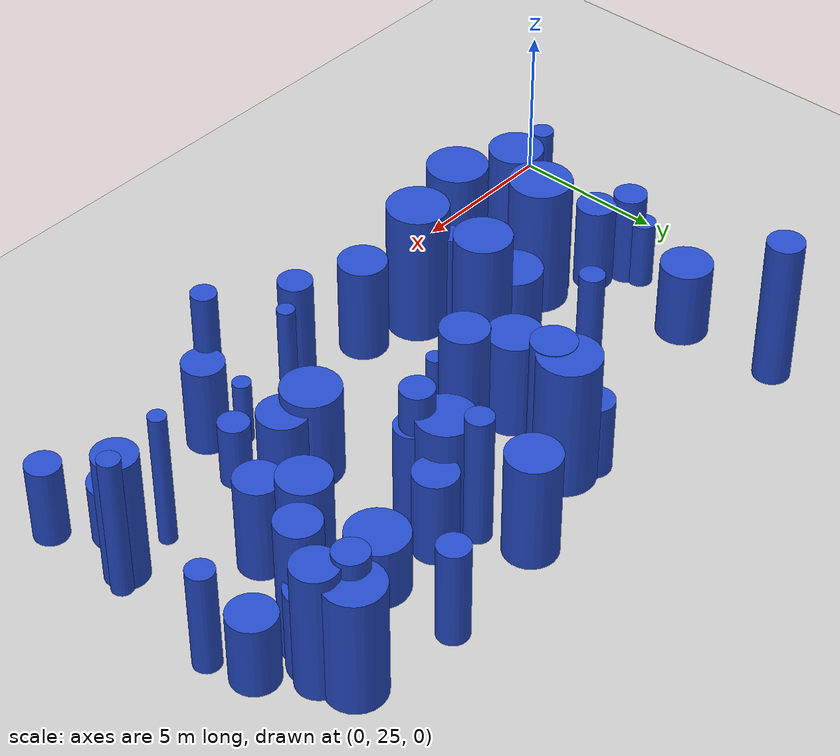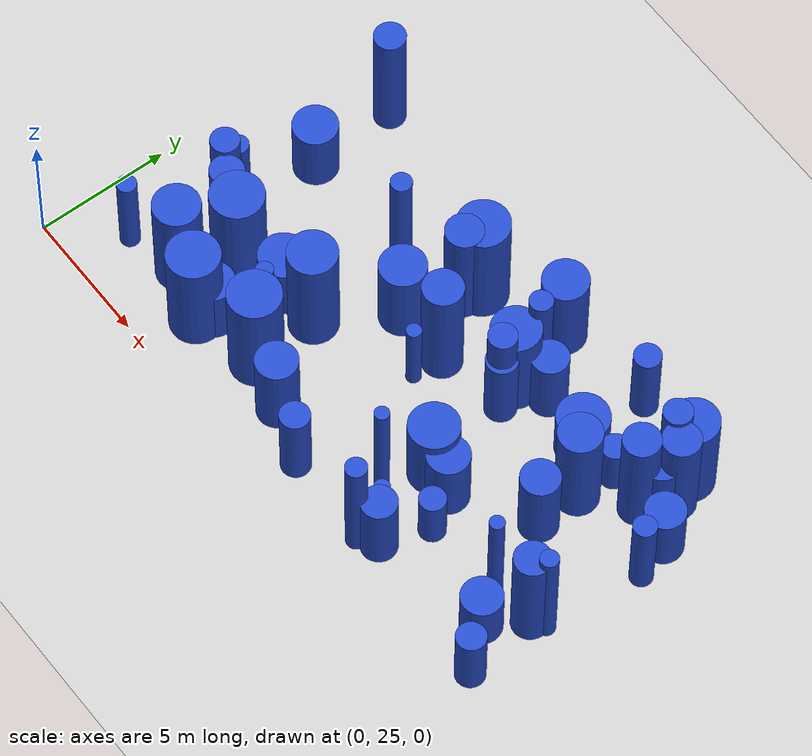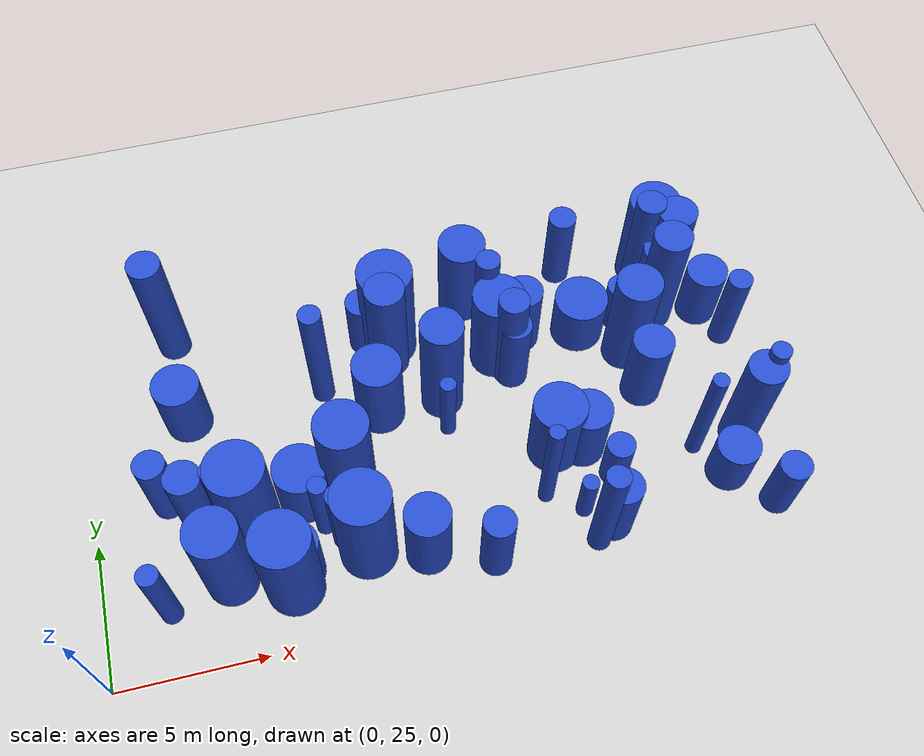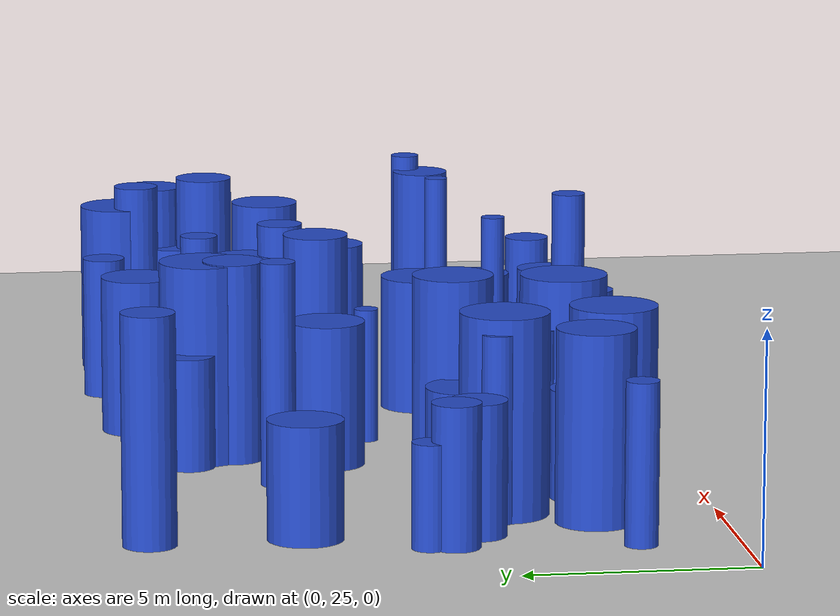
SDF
<sdf version="1.6">
 <world name="default">
  <model name="ground_plane">
   <static>1</static>
   <link name="link">
    <collision name="collision">
     <geometry><plane><normal>0 0 1</normal><size>100 100</size></plane></geometry>
     <surface><friction><ode><mu>100</mu><mu2>50</mu2></ode></friction></surface>
    </collision>
    <visual name="visual">
     <cast_shadows>0</cast_shadows>
     <geometry><plane><normal>0 0 1</normal><size>100 100</size></plane></geometry>
     <material>
      <script><uri>file://media/materials/scripts/gazebo.material</uri><name>Gazebo/Grey</name></script>
     </material>
    </visual>
   </link>
  </model>
  <model name="15">
   <static>0</static>
   <link name="link">
    <inertial>
     <mass>2</mass>
     <inertia><ixx>2.02878</ixx><ixy>0</ixy><ixz>0</ixz><iyy>2.02878</iyy><iyz>0</iyz><izz>0.837732</izz></inertia>
    </inertial>
    <collision name="collision">
     <geometry><cylinder><length>3.10797</length><radius>0.915277</radius></cylinder></geometry>
     <surface><contact><collide_without_contact>1</collide_without_contact></contact></surface>
    </collision>
    <visual name="visual">
     <geometry><cylinder><length>3.10797</length><radius>0.915277</radius></cylinder></geometry>
     <material>
      <script><uri>file://media/materials/scripts/gazebo.material</uri><name>Gazebo/Blue</name></script>
     </material>
    </visual>
    <gravity>0</gravity>
   </link>
   <pose>15.7285 29.9287 1.55399 0 -0 0</pose>
  </model>
  <model name="21">
   <static>0</static>
   <link name="link">
    <inertial>
     <mass>2</mass>
     <inertia>
      <ixx>0.942504</ixx>
      <ixy>0</ixy>
      <ixz>0</ixz>
      <iyy>0.942504</iyy>
      <iyz>0</iyz>
      <izz>0.157121</izz>
     </inertia>
    </inertial>
    <collision name="collision">
     <geometry><cylinder><length>2.27677</length><radius>0.396385</radius></cylinder></geometry>
     <surface><contact><collide_without_contact>1</collide_without_contact></contact></surface>
    </collision>
    <visual name="visual">
     <geometry><cylinder><length>2.27677</length><radius>0.396385</radius></cylinder></geometry>
     <material>
      <script><uri>file://media/materials/scripts/gazebo.material</uri><name>Gazebo/Blue</name></script>
     </material>
    </visual>
    <gravity>0</gravity>
   </link>
   <pose>2.46046 31.5423 1.13838 0 -0 0</pose>
  </model>
  <model name="29">
   <static>0</static>
   <link name="link">
    <inertial>
     <mass>2</mass>
     <inertia><ixx>1.13627</ixx><ixy>0</ixy><ixz>0</ixz><iyy>1.13627</iyy><iyz>0</iyz><izz>0.890575</izz></inertia>
    </inertial>
    <collision name="collision">
     <geometry><cylinder><length>2.03615</length><radius>0.943703</radius></cylinder></geometry>
     <surface><contact><collide_without_contact>1</collide_without_contact></contact></surface>
    </collision>
    <visual name="visual">
     <geometry><cylinder><length>2.03615</length><radius>0.943703</radius></cylinder></geometry>
     <material>
      <script><uri>file://media/materials/scripts/gazebo.material</uri><name>Gazebo/Blue</name></script>
     </material>
    </visual>
    <gravity>0</gravity>
   </link>
   <pose>17.9595 34.4953 1.01807 0 -0 0</pose>
  </model>
  <model name="33">
   <static>0</static>
   <link name="link">
    <inertial>
     <mass>2</mass>
     <inertia><ixx>3.34107</ixx><ixy>0</ixy><ixz>0</ixz><iyy>3.34107</iyy><iyz>0</iyz><izz>0.741521</izz></inertia>
    </inertial>
    <collision name="collision">
     <geometry><cylinder><length>4.22159</length><radius>0.861116</radius></cylinder></geometry>
     <surface><contact><collide_without_contact>1</collide_without_contact></contact></surface>
    </collision>
    <visual name="visual">
     <geometry><cylinder><length>4.22159</length><radius>0.861116</radius></cylinder></geometry>
     <material>
      <script><uri>file://media/materials/scripts/gazebo.material</uri><name>Gazebo/Blue</name></script>
     </material>
    </visual>
    <gravity>0</gravity>
   </link>
   <pose>4.2013 27.7585 2.1108 0 -0 0</pose>
  </model>
  <model name="34">
   <static>0</static>
   <link name="link">
    <inertial>
     <mass>2</mass>
     <inertia><ixx>1.44194</ixx><ixy>0</ixy><ixz>0</ixz><iyy>1.44194</iyy><iyz>0</iyz><izz>0.671354</izz></inertia>
    </inertial>
    <collision name="collision">
     <geometry><cylinder><length>2.57635</length><radius>0.819362</radius></cylinder></geometry>
     <surface><contact><collide_without_contact>1</collide_without_contact></contact></surface>
    </collision>
    <visual name="visual">
     <geometry><cylinder><length>2.57635</length><radius>0.819362</radius></cylinder></geometry>
     <material>
      <script><uri>file://media/materials/scripts/gazebo.material</uri><name>Gazebo/Blue</name></script>
     </material>
    </visual>
    <gravity>0</gravity>
   </link>
   <pose>3.57515 34.0262 1.28817 0 -0 0</pose>
  </model>
  <model name="52">
   <static>0</static>
   <link name="link">
    <inertial>
     <mass>2</mass>
     <inertia><ixx>3.32112</ixx><ixy>0</ixy><ixz>0</ixz><iyy>3.32112</iyy><iyz>0</iyz><izz>0.180098</izz></inertia>
    </inertial>
    <collision name="collision">
     <geometry><cylinder><length>4.40301</length><radius>0.42438</radius></cylinder></geometry>
     <surface><contact><collide_without_contact>1</collide_without_contact></contact></surface>
    </collision>
    <visual name="visual">
     <geometry><cylinder><length>4.40301</length><radius>0.42438</radius></cylinder></geometry>
     <material>
      <script><uri>file://media/materials/scripts/gazebo.material</uri><name>Gazebo/Blue</name></script>
     </material>
    </visual>
    <gravity>0</gravity>
   </link>
   <pose>14.6406 35.2188 2.2015 0 -0 0</pose>
  </model>
  <model name="58">
   <static>0</static>
   <link name="link">
    <inertial>
     <mass>2</mass>
     <inertia><ixx>2.13713</ixx><ixy>0</ixy><ixz>0</ixz><iyy>2.13713</iyy><iyz>0</iyz><izz>0.129492</izz></inertia>
    </inertial>
    <collision name="collision">
     <geometry><cylinder><length>3.52623</length><radius>0.35985</radius></cylinder></geometry>
     <surface><contact><collide_without_contact>1</collide_without_contact></contact></surface>
    </collision>
    <visual name="visual">
     <geometry><cylinder><length>3.52623</length><radius>0.35985</radius></cylinder></geometry>
     <material>
      <script><uri>file://media/materials/scripts/gazebo.material</uri><name>Gazebo/Blue</name></script>
     </material>
    </visual>
    <gravity>0</gravity>
   </link>
   <pose>2.13297 27.1405 1.76312 0 -0 0</pose>
  </model>
  <model name="59">
   <static>0</static>
   <link name="link">
    <inertial>
     <mass>2</mass>
     <inertia><ixx>1.95679</ixx><ixy>0</ixy><ixz>0</ixz><iyy>1.95679</iyy><iyz>0</iyz><izz>0.291907</izz></inertia>
    </inertial>
    <collision name="collision">
     <geometry><cylinder><length>3.29622</length><radius>0.540284</radius></cylinder></geometry>
     <surface><contact><collide_without_contact>1</collide_without_contact></contact></surface>
    </collision>
    <visual name="visual">
     <geometry><cylinder><length>3.29622</length><radius>0.540284</radius></cylinder></geometry>
     <material>
      <script><uri>file://media/materials/scripts/gazebo.material</uri><name>Gazebo/Blue</name></script>
     </material>
    </visual>
    <gravity>0</gravity>
   </link>
   <pose>12.7214 26.4089 1.64811 0 -0 0</pose>
  </model>
  <model name="99">
   <static>0</static>
   <link name="link">
    <inertial>
     <mass>2</mass>
     <inertia><ixx>2.01084</ixx><ixy>0</ixy><ixz>0</ixz><iyy>2.01084</iyy><iyz>0</iyz><izz>0.169037</izz></inertia>
    </inertial>
    <collision name="collision">
     <geometry><cylinder><length>3.39969</length><radius>0.411142</radius></cylinder></geometry>
     <surface><contact><collide_without_contact>1</collide_without_contact></contact></surface>
    </collision>
    <visual name="visual">
     <geometry><cylinder><length>3.39969</length><radius>0.411142</radius></cylinder></geometry>
     <material>
      <script><uri>file://media/materials/scripts/gazebo.material</uri><name>Gazebo/Blue</name></script>
     </material>
    </visual>
    <gravity>0</gravity>
   </link>
   <pose>8.06943 28.385 1.69985 0 -0 0</pose>
  </model>
  <model name="101">
   <static>0</static>
   <link name="link">
    <inertial>
     <mass>2</mass>
     <inertia><ixx>2.85249</ixx><ixy>0</ixy><ixz>0</ixz><iyy>2.85249</iyy><iyz>0</iyz><izz>0.131371</izz></inertia>
    </inertial>
    <collision name="collision">
     <geometry><cylinder><length>4.08911</length><radius>0.362452</radius></cylinder></geometry>
     <surface><contact><collide_without_contact>1</collide_without_contact></contact></surface>
    </collision>
    <visual name="visual">
     <geometry><cylinder><length>4.08911</length><radius>0.362452</radius></cylinder></geometry>
     <material>
      <script><uri>file://media/materials/scripts/gazebo.material</uri><name>Gazebo/Blue</name></script>
     </material>
    </visual>
    <gravity>0</gravity>
   </link>
   <pose>4.46368 29.8106 2.04456 0 -0 0</pose>
  </model>
  <model name="126">
   <static>0</static>
   <link name="link">
    <inertial>
     <mass>2</mass>
     <inertia><ixx>3.65056</ixx><ixy>0</ixy><ixz>0</ixz><iyy>3.65056</iyy><iyz>0</iyz><izz>0.476539</izz></inertia>
    </inertial>
    <collision name="collision">
     <geometry><cylinder><length>4.52479</length><radius>0.690318</radius></cylinder></geometry>
     <surface><contact><collide_without_contact>1</collide_without_contact></contact></surface>
    </collision>
    <visual name="visual">
     <geometry><cylinder><length>4.52479</length><radius>0.690318</radius></cylinder></geometry>
     <material>
      <script><uri>file://media/materials/scripts/gazebo.material</uri><name>Gazebo/Blue</name></script>
     </material>
    </visual>
    <gravity>0</gravity>
   </link>
   <pose>10.9775 34.793 2.26239 0 -0 0</pose>
  </model>
  <model name="131">
   <static>0</static>
   <link name="link">
    <inertial>
     <mass>2</mass>
     <inertia>
      <ixx>0.803513</ixx>
      <ixy>0</ixy>
      <ixz>0</ixz>
      <iyy>0.803513</iyy>
      <iyz>0</iyz>
      <izz>0.0823005</izz>
     </inertia>
    </inertial>
    <collision name="collision">
     <geometry><cylinder><length>2.13873</length><radius>0.286881</radius></cylinder></geometry>
     <surface><contact><collide_without_contact>1</collide_without_contact></contact></surface>
    </collision>
    <visual name="visual">
     <geometry><cylinder><length>2.13873</length><radius>0.286881</radius></cylinder></geometry>
     <material>
      <script><uri>file://media/materials/scripts/gazebo.material</uri><name>Gazebo/Blue</name></script>
     </material>
    </visual>
    <gravity>0</gravity>
   </link>
   <pose>16.106 27.4898 1.06937 0 -0 0</pose>
  </model>
  <model name="137">
   <static>0</static>
   <link name="link">
    <inertial>
     <mass>2</mass>
     <inertia><ixx>3.36348</ixx><ixy>0</ixy><ixz>0</ixz><iyy>3.36348</iyy><iyz>0</iyz><izz>0.618252</izz></inertia>
    </inertial>
    <collision name="collision">
     <geometry><cylinder><length>4.2809</length><radius>0.78629</radius></cylinder></geometry>
     <surface><contact><collide_without_contact>1</collide_without_contact></contact></surface>
    </collision>
    <visual name="visual">
     <geometry><cylinder><length>4.2809</length><radius>0.78629</radius></cylinder></geometry>
     <material>
      <script><uri>file://media/materials/scripts/gazebo.material</uri><name>Gazebo/Blue</name></script>
     </material>
    </visual>
    <gravity>0</gravity>
   </link>
   <pose>19.3556 33.2046 2.14045 0 -0 0</pose>
  </model>
  <model name="144">
   <static>0</static>
   <link name="link">
    <inertial>
     <mass>2</mass>
     <inertia><ixx>2.12755</ixx><ixy>0</ixy><ixz>0</ixz><iyy>2.12755</iyy><iyz>0</iyz><izz>0.723564</izz></inertia>
    </inertial>
    <collision name="collision">
     <geometry><cylinder><length>3.25494</length><radius>0.850626</radius></cylinder></geometry>
     <surface><contact><collide_without_contact>1</collide_without_contact></contact></surface>
    </collision>
    <visual name="visual">
     <geometry><cylinder><length>3.25494</length><radius>0.850626</radius></cylinder></geometry>
     <material>
      <script><uri>file://media/materials/scripts/gazebo.material</uri><name>Gazebo/Blue</name></script>
     </material>
    </visual>
    <gravity>0</gravity>
   </link>
   <pose>10.2162 32.7833 1.62747 0 -0 0</pose>
  </model>
  <model name="147">
   <static>0</static>
   <link name="link">
    <inertial>
     <mass>2</mass>
     <inertia><ixx>3.49009</ixx><ixy>0</ixy><ixz>0</ixz><iyy>3.49009</iyy><iyz>0</iyz><izz>0.274124</izz></inertia>
    </inertial>
    <collision name="collision">
     <geometry><cylinder><length>4.48533</length><radius>0.523568</radius></cylinder></geometry>
     <surface><contact><collide_without_contact>1</collide_without_contact></contact></surface>
    </collision>
    <visual name="visual">
     <geometry><cylinder><length>4.48533</length><radius>0.523568</radius></cylinder></geometry>
     <material>
      <script><uri>file://media/materials/scripts/gazebo.material</uri><name>Gazebo/Blue</name></script>
     </material>
    </visual>
    <gravity>0</gravity>
   </link>
   <pose>20.7487 36.1869 2.24266 0 -0 0</pose>
  </model>
  <model name="153">
   <static>0</static>
   <link name="link">
    <inertial>
     <mass>2</mass>
     <inertia><ixx>1.69776</ixx><ixy>0</ixy><ixz>0</ixz><iyy>1.69776</iyy><iyz>0</iyz><izz>0.423456</izz></inertia>
    </inertial>
    <collision name="collision">
     <geometry><cylinder><length>2.986</length><radius>0.650735</radius></cylinder></geometry>
     <surface><contact><collide_without_contact>1</collide_without_contact></contact></surface>
    </collision>
    <visual name="visual">
     <geometry><cylinder><length>2.986</length><radius>0.650735</radius></cylinder></geometry>
     <material>
      <script><uri>file://media/materials/scripts/gazebo.material</uri><name>Gazebo/Blue</name></script>
     </material>
    </visual>
    <gravity>0</gravity>
   </link>
   <pose>16.8882 26.7755 1.493 0 -0 0</pose>
  </model>
  <model name="175">
   <static>0</static>
   <link name="link">
    <inertial>
     <mass>2</mass>
     <inertia>
      <ixx>1.59317</ixx>
      <ixy>0</ixy>
      <ixz>0</ixz>
      <iyy>1.59317</iyy>
      <iyz>0</iyz>
      <izz>0.0750365</izz>
     </inertia>
    </inertial>
    <collision name="collision">
     <geometry><cylinder><length>3.05515</length><radius>0.273928</radius></cylinder></geometry>
     <surface><contact><collide_without_contact>1</collide_without_contact></contact></surface>
    </collision>
    <visual name="visual">
     <geometry><cylinder><length>3.05515</length><radius>0.273928</radius></cylinder></geometry>
     <material>
      <script><uri>file://media/materials/scripts/gazebo.material</uri><name>Gazebo/Blue</name></script>
     </material>
    </visual>
    <gravity>0</gravity>
   </link>
   <pose>12.3757 31.6197 1.52757 0 -0 0</pose>
  </model>
  <model name="179">
   <static>0</static>
   <link name="link">
    <inertial>
     <mass>2</mass>
     <inertia><ixx>4.21717</ixx><ixy>0</ixy><ixz>0</ixz><iyy>4.21717</iyy><iyz>0</iyz><izz>0.150288</izz></inertia>
    </inertial>
    <collision name="collision">
     <geometry><cylinder><length>4.98519</length><radius>0.387669</radius></cylinder></geometry>
     <surface><contact><collide_without_contact>1</collide_without_contact></contact></surface>
    </collision>
    <visual name="visual">
     <geometry><cylinder><length>4.98519</length><radius>0.387669</radius></cylinder></geometry>
     <material>
      <script><uri>file://media/materials/scripts/gazebo.material</uri><name>Gazebo/Blue</name></script>
     </material>
    </visual>
    <gravity>0</gravity>
   </link>
   <pose>8.40302 34.0732 2.4926 0 -0 0</pose>
  </model>
  <model name="183">
   <static>0</static>
   <link name="link">
    <inertial>
     <mass>2</mass>
     <inertia><ixx>2.49307</ixx><ixy>0</ixy><ixz>0</ixz><iyy>2.49307</iyy><iyz>0</iyz><izz>0.692048</izz></inertia>
    </inertial>
    <collision name="collision">
     <geometry><cylinder><length>3.58919</length><radius>0.831894</radius></cylinder></geometry>
     <surface><contact><collide_without_contact>1</collide_without_contact></contact></surface>
    </collision>
    <visual name="visual">
     <geometry><cylinder><length>3.58919</length><radius>0.831894</radius></cylinder></geometry>
     <material>
      <script><uri>file://media/materials/scripts/gazebo.material</uri><name>Gazebo/Blue</name></script>
     </material>
    </visual>
    <gravity>0</gravity>
   </link>
   <pose>14.1066 36.6947 1.79459 0 -0 0</pose>
  </model>
  <model name="185">
   <static>0</static>
   <link name="link">
    <inertial>
     <mass>2</mass>
     <inertia><ixx>4.28066</ixx><ixy>0</ixy><ixz>0</ixz><iyy>4.28066</iyy><iyz>0</iyz><izz>0.335671</izz></inertia>
    </inertial>
    <collision name="collision">
     <geometry><cylinder><length>4.96759</length><radius>0.579371</radius></cylinder></geometry>
     <surface><contact><collide_without_contact>1</collide_without_contact></contact></surface>
    </collision>
    <visual name="visual">
     <geometry><cylinder><length>4.96759</length><radius>0.579371</radius></cylinder></geometry>
     <material>
      <script><uri>file://media/materials/scripts/gazebo.material</uri><name>Gazebo/Blue</name></script>
     </material>
    </visual>
    <gravity>0</gravity>
   </link>
   <pose>3.46128 37.3119 2.4838 0 -0 0</pose>
  </model>
  <model name="195">
   <static>0</static>
   <link name="link">
    <inertial>
     <mass>2</mass>
     <inertia><ixx>2.86775</ixx><ixy>0</ixy><ixz>0</ixz><iyy>2.86775</iyy><iyz>0</iyz><izz>0.80804</izz></inertia>
    </inertial>
    <collision name="collision">
     <geometry><cylinder><length>3.84478</length><radius>0.898911</radius></cylinder></geometry>
     <surface><contact><collide_without_contact>1</collide_without_contact></contact></surface>
    </collision>
    <visual name="visual">
     <geometry><cylinder><length>3.84478</length><radius>0.898911</radius></cylinder></geometry>
     <material>
      <script><uri>file://media/materials/scripts/gazebo.material</uri><name>Gazebo/Blue</name></script>
     </material>
    </visual>
    <gravity>0</gravity>
   </link>
   <pose>14.7374 34.1048 1.92239 0 -0 0</pose>
  </model>
  <model name="209">
   <static>0</static>
   <link name="link">
    <inertial>
     <mass>2</mass>
     <inertia><ixx>3.79171</ixx><ixy>0</ixy><ixz>0</ixz><iyy>3.79171</iyy><iyz>0</iyz><izz>0.451853</izz></inertia>
    </inertial>
    <collision name="collision">
     <geometry><cylinder><length>4.62544</length><radius>0.6722</radius></cylinder></geometry>
     <surface><contact><collide_without_contact>1</collide_without_contact></contact></surface>
    </collision>
    <visual name="visual">
     <geometry><cylinder><length>4.62544</length><radius>0.6722</radius></cylinder></geometry>
     <material>
      <script><uri>file://media/materials/scripts/gazebo.material</uri><name>Gazebo/Blue</name></script>
     </material>
    </visual>
    <gravity>0</gravity>
   </link>
   <pose>20.9317 34.5239 2.31272 0 -0 0</pose>
  </model>
  <model name="220">
   <static>0</static>
   <link name="link">
    <inertial>
     <mass>2</mass>
     <inertia><ixx>1.73735</ixx><ixy>0</ixy><ixz>0</ixz><iyy>1.73735</iyy><iyz>0</iyz><izz>0.282029</izz></inertia>
    </inertial>
    <collision name="collision">
     <geometry><cylinder><length>3.09484</length><radius>0.531064</radius></cylinder></geometry>
     <surface><contact><collide_without_contact>1</collide_without_contact></contact></surface>
    </collision>
    <visual name="visual">
     <geometry><cylinder><length>3.09484</length><radius>0.531064</radius></cylinder></geometry>
     <material>
      <script><uri>file://media/materials/scripts/gazebo.material</uri><name>Gazebo/Blue</name></script>
     </material>
    </visual>
    <gravity>0</gravity>
   </link>
   <pose>2.48731 30.9961 1.54742 0 -0 0</pose>
  </model>
  <model name="225">
   <static>0</static>
   <link name="link">
    <inertial>
     <mass>2</mass>
     <inertia><ixx>3.35615</ixx><ixy>0</ixy><ixz>0</ixz><iyy>3.35615</iyy><iyz>0</iyz><izz>0.473322</izz></inertia>
    </inertial>
    <collision name="collision">
     <geometry><cylinder><length>4.32631</length><radius>0.687984</radius></cylinder></geometry>
     <surface><contact><collide_without_contact>1</collide_without_contact></contact></surface>
    </collision>
    <visual name="visual">
     <geometry><cylinder><length>4.32631</length><radius>0.687984</radius></cylinder></geometry>
     <material>
      <script><uri>file://media/materials/scripts/gazebo.material</uri><name>Gazebo/Blue</name></script>
     </material>
    </visual>
    <gravity>0</gravity>
   </link>
   <pose>21.5656 35.706 2.16315 0 -0 0</pose>
  </model>
  <model name="228">
   <static>0</static>
   <link name="link">
    <inertial>
     <mass>2</mass>
     <inertia><ixx>1.73638</ixx><ixy>0</ixy><ixz>0</ixz><iyy>1.73638</iyy><iyz>0</iyz><izz>0.623905</izz></inertia>
    </inertial>
    <collision name="collision">
     <geometry><cylinder><length>2.92345</length><radius>0.789877</radius></cylinder></geometry>
     <surface><contact><collide_without_contact>1</collide_without_contact></contact></surface>
    </collision>
    <visual name="visual">
     <geometry><cylinder><length>2.92345</length><radius>0.789877</radius></cylinder></geometry>
     <material>
      <script><uri>file://media/materials/scripts/gazebo.material</uri><name>Gazebo/Blue</name></script>
     </material>
    </visual>
    <gravity>0</gravity>
   </link>
   <pose>21.2095 35.2223 1.46173 0 -0 0</pose>
  </model>
  <model name="234">
   <static>0</static>
   <link name="link">
    <inertial>
     <mass>2</mass>
     <inertia><ixx>4.06155</ixx><ixy>0</ixy><ixz>0</ixz><iyy>4.06155</iyy><iyz>0</iyz><izz>0.153224</izz></inertia>
    </inertial>
    <collision name="collision">
     <geometry><cylinder><length>4.88975</length><radius>0.391438</radius></cylinder></geometry>
     <surface><contact><collide_without_contact>1</collide_without_contact></contact></surface>
    </collision>
    <visual name="visual">
     <geometry><cylinder><length>4.88975</length><radius>0.391438</radius></cylinder></geometry>
     <material>
      <script><uri>file://media/materials/scripts/gazebo.material</uri><name>Gazebo/Blue</name></script>
     </material>
    </visual>
    <gravity>0</gravity>
   </link>
   <pose>16.257 26.3131 2.44487 0 -0 0</pose>
  </model>
  <model name="264">
   <static>0</static>
   <link name="link">
    <inertial>
     <mass>2</mass>
     <inertia><ixx>1.35654</ixx><ixy>0</ixy><ixz>0</ixz><iyy>1.35654</iyy><iyz>0</iyz><izz>0.813174</izz></inertia>
    </inertial>
    <collision name="collision">
     <geometry><cylinder><length>2.38741</length><radius>0.901762</radius></cylinder></geometry>
     <surface><contact><collide_without_contact>1</collide_without_contact></contact></surface>
    </collision>
    <visual name="visual">
     <geometry><cylinder><length>2.38741</length><radius>0.901762</radius></cylinder></geometry>
     <material>
      <script><uri>file://media/materials/scripts/gazebo.material</uri><name>Gazebo/Blue</name></script>
     </material>
    </visual>
    <gravity>0</gravity>
   </link>
   <pose>7.04181 30.1082 1.1937 0 -0 0</pose>
  </model>
  <model name="272">
   <static>0</static>
   <link name="link">
    <inertial>
     <mass>2</mass>
     <inertia>
      <ixx>0.881799</ixx>
      <ixy>0</ixy>
      <ixz>0</ixz>
      <iyy>0.881799</iyy>
      <iyz>0</iyz>
      <izz>0.234059</izz>
     </inertia>
    </inertial>
    <collision name="collision">
     <geometry><cylinder><length>2.14211</length><radius>0.483796</radius></cylinder></geometry>
     <surface><contact><collide_without_contact>1</collide_without_contact></contact></surface>
    </collision>
    <visual name="visual">
     <geometry><cylinder><length>2.14211</length><radius>0.483796</radius></cylinder></geometry>
     <material>
      <script><uri>file://media/materials/scripts/gazebo.material</uri><name>Gazebo/Blue</name></script>
     </material>
    </visual>
    <gravity>0</gravity>
   </link>
   <pose>17.4806 28.5494 1.07105 0 -0 0</pose>
  </model>
  <model name="274">
   <static>0</static>
   <link name="link">
    <inertial>
     <mass>2</mass>
     <inertia>
      <ixx>0.828481</ixx>
      <ixy>0</ixy>
      <ixz>0</ixz>
      <iyy>0.828481</iyy>
      <iyz>0</iyz>
      <izz>0.248676</izz>
     </inertia>
    </inertial>
    <collision name="collision">
     <geometry><cylinder><length>2.05545</length><radius>0.498675</radius></cylinder></geometry>
     <surface><contact><collide_without_contact>1</collide_without_contact></contact></surface>
    </collision>
    <visual name="visual">
     <geometry><cylinder><length>2.05545</length><radius>0.498675</radius></cylinder></geometry>
     <material>
      <script><uri>file://media/materials/scripts/gazebo.material</uri><name>Gazebo/Blue</name></script>
     </material>
    </visual>
    <gravity>0</gravity>
   </link>
   <pose>19.5015 34.638 1.02772 0 -0 0</pose>
  </model>
  <model name="294">
   <static>0</static>
   <link name="link">
    <inertial>
     <mass>2</mass>
     <inertia><ixx>3.86112</ixx><ixy>0</ixy><ixz>0</ixz><iyy>3.86112</iyy><iyz>0</iyz><izz>0.808009</izz></inertia>
    </inertial>
    <collision name="collision">
     <geometry><cylinder><length>4.55441</length><radius>0.898893</radius></cylinder></geometry>
     <surface><contact><collide_without_contact>1</collide_without_contact></contact></surface>
    </collision>
    <visual name="visual">
     <geometry><cylinder><length>4.55441</length><radius>0.898893</radius></cylinder></geometry>
     <material>
      <script><uri>file://media/materials/scripts/gazebo.material</uri><name>Gazebo/Blue</name></script>
     </material>
    </visual>
    <gravity>0</gravity>
   </link>
   <pose>8.62309 30.1861 2.27721 0 -0 0</pose>
  </model>
  <model name="309">
   <static>0</static>
   <link name="link">
    <inertial>
     <mass>2</mass>
     <inertia><ixx>3.81638</ixx><ixy>0</ixy><ixz>0</ixz><iyy>3.81638</iyy><iyz>0</iyz><izz>0.93604</izz></inertia>
    </inertial>
    <collision name="collision">
     <geometry><cylinder><length>4.4822</length><radius>0.967492</radius></cylinder></geometry>
     <surface><contact><collide_without_contact>1</collide_without_contact></contact></surface>
    </collision>
    <visual name="visual">
     <geometry><cylinder><length>4.4822</length><radius>0.967492</radius></cylinder></geometry>
     <material>
      <script><uri>file://media/materials/scripts/gazebo.material</uri><name>Gazebo/Blue</name></script>
     </material>
    </visual>
    <gravity>0</gravity>
   </link>
   <pose>8.72669 27.7035 2.2411 0 -0 0</pose>
  </model>
  <model name="317">
   <static>0</static>
   <link name="link">
    <inertial>
     <mass>2</mass>
     <inertia><ixx>1.91824</ixx><ixy>0</ixy><ixz>0</ixz><iyy>1.91824</iyy><iyz>0</iyz><izz>0.241006</izz></inertia>
    </inertial>
    <collision name="collision">
     <geometry><cylinder><length>3.28427</length><radius>0.490923</radius></cylinder></geometry>
     <surface><contact><collide_without_contact>1</collide_without_contact></contact></surface>
    </collision>
    <visual name="visual">
     <geometry><cylinder><length>3.28427</length><radius>0.490923</radius></cylinder></geometry>
     <material>
      <script><uri>file://media/materials/scripts/gazebo.material</uri><name>Gazebo/Blue</name></script>
     </material>
    </visual>
    <gravity>0</gravity>
   </link>
   <pose>17.942 37.1835 1.64213 0 -0 0</pose>
  </model>
  <model name="327">
   <static>0</static>
   <link name="link">
    <inertial>
     <mass>2</mass>
     <inertia><ixx>1.61984</ixx><ixy>0</ixy><ixz>0</ixz><iyy>1.61984</iyy><iyz>0</iyz><izz>0.388701</izz></inertia>
    </inertial>
    <collision name="collision">
     <geometry><cylinder><length>2.92454</length><radius>0.623459</radius></cylinder></geometry>
     <surface><contact><collide_without_contact>1</collide_without_contact></contact></surface>
    </collision>
    <visual name="visual">
     <geometry><cylinder><length>2.92454</length><radius>0.623459</radius></cylinder></geometry>
     <material>
      <script><uri>file://media/materials/scripts/gazebo.material</uri><name>Gazebo/Blue</name></script>
     </material>
    </visual>
    <gravity>0</gravity>
   </link>
   <pose>3.41784 30.3952 1.46227 0 -0 0</pose>
  </model>
  <model name="333">
   <static>0</static>
   <link name="link">
    <inertial>
     <mass>2</mass>
     <inertia><ixx>1.29841</ixx><ixy>0</ixy><ixz>0</ixz><iyy>1.29841</iyy><iyz>0</iyz><izz>0.644225</izz></inertia>
    </inertial>
    <collision name="collision">
     <geometry><cylinder><length>2.42029</length><radius>0.802636</radius></cylinder></geometry>
     <surface><contact><collide_without_contact>1</collide_without_contact></contact></surface>
    </collision>
    <visual name="visual">
     <geometry><cylinder><length>2.42029</length><radius>0.802636</radius></cylinder></geometry>
     <material>
      <script><uri>file://media/materials/scripts/gazebo.material</uri><name>Gazebo/Blue</name></script>
     </material>
    </visual>
    <gravity>0</gravity>
   </link>
   <pose>6.43596 27.5734 1.21014 0 -0 0</pose>
  </model>
  <model name="348">
   <static>0</static>
   <link name="link">
    <inertial>
     <mass>2</mass>
     <inertia><ixx>1.76393</ixx><ixy>0</ixy><ixz>0</ixz><iyy>1.76393</iyy><iyz>0</iyz><izz>0.105096</izz></inertia>
    </inertial>
    <collision name="collision">
     <geometry><cylinder><length>3.20441</length><radius>0.324185</radius></cylinder></geometry>
     <surface><contact><collide_without_contact>1</collide_without_contact></contact></surface>
    </collision>
    <visual name="visual">
     <geometry><cylinder><length>3.20441</length><radius>0.324185</radius></cylinder></geometry>
     <material>
      <script><uri>file://media/materials/scripts/gazebo.material</uri><name>Gazebo/Blue</name></script>
     </material>
    </visual>
    <gravity>0</gravity>
   </link>
   <pose>7.51858 28.9813 1.60221 0 -0 0</pose>
  </model>
  <model name="350">
   <static>0</static>
   <link name="link">
    <inertial>
     <mass>2</mass>
     <inertia><ixx>1.89189</ixx><ixy>0</ixy><ixz>0</ixz><iyy>1.89189</iyy><iyz>0</iyz><izz>0.329949</izz></inertia>
    </inertial>
    <collision name="collision">
     <geometry><cylinder><length>3.21893</length><radius>0.574412</radius></cylinder></geometry>
     <surface><contact><collide_without_contact>1</collide_without_contact></contact></surface>
    </collision>
    <visual name="visual">
     <geometry><cylinder><length>3.21893</length><radius>0.574412</radius></cylinder></geometry>
     <material>
      <script><uri>file://media/materials/scripts/gazebo.material</uri><name>Gazebo/Blue</name></script>
     </material>
    </visual>
    <gravity>0</gravity>
   </link>
   <pose>15.1181 33.2291 1.60946 0 -0 0</pose>
  </model>
  <model name="353">
   <static>0</static>
   <link name="link">
    <inertial>
     <mass>2</mass>
     <inertia><ixx>3.49807</ixx><ixy>0</ixy><ixz>0</ixz><iyy>3.49807</iyy><iyz>0</iyz><izz>0.439225</izz></inertia>
    </inertial>
    <collision name="collision">
     <geometry><cylinder><length>4.43517</length><radius>0.662741</radius></cylinder></geometry>
     <surface><contact><collide_without_contact>1</collide_without_contact></contact></surface>
    </collision>
    <visual name="visual">
     <geometry><cylinder><length>4.43517</length><radius>0.662741</radius></cylinder></geometry>
     <material>
      <script><uri>file://media/materials/scripts/gazebo.material</uri><name>Gazebo/Blue</name></script>
     </material>
    </visual>
    <gravity>0</gravity>
   </link>
   <pose>22.1979 29.0296 2.21758 0 -0 0</pose>
  </model>
  <model name="354">
   <static>0</static>
   <link name="link">
    <inertial>
     <mass>2</mass>
     <inertia><ixx>1.23808</ixx><ixy>0</ixy><ixz>0</ixz><iyy>1.23808</iyy><iyz>0</iyz><izz>0.328981</izz></inertia>
    </inertial>
    <collision name="collision">
     <geometry><cylinder><length>2.53802</length><radius>0.573569</radius></cylinder></geometry>
     <surface><contact><collide_without_contact>1</collide_without_contact></contact></surface>
    </collision>
    <visual name="visual">
     <geometry><cylinder><length>2.53802</length><radius>0.573569</radius></cylinder></geometry>
     <material>
      <script><uri>file://media/materials/scripts/gazebo.material</uri><name>Gazebo/Blue</name></script>
     </material>
    </visual>
    <gravity>0</gravity>
   </link>
   <pose>10.2903 35.8535 1.26901 0 -0 0</pose>
  </model>
  <model name="358">
   <static>0</static>
   <link name="link">
    <inertial>
     <mass>2</mass>
     <inertia><ixx>3.83321</ixx><ixy>0</ixy><ixz>0</ixz><iyy>3.83321</iyy><iyz>0</iyz><izz>0.920871</izz></inertia>
    </inertial>
    <collision name="collision">
     <geometry><cylinder><length>4.49851</length><radius>0.95962</radius></cylinder></geometry>
     <surface><contact><collide_without_contact>1</collide_without_contact></contact></surface>
    </collision>
    <visual name="visual">
     <geometry><cylinder><length>4.49851</length><radius>0.95962</radius></cylinder></geometry>
     <material>
      <script><uri>file://media/materials/scripts/gazebo.material</uri><name>Gazebo/Blue</name></script>
     </material>
    </visual>
    <gravity>0</gravity>
   </link>
   <pose>11.1297 35.4783 2.24926 0 -0 0</pose>
  </model>
  <model name="370">
   <static>0</static>
   <link name="link">
    <inertial>
     <mass>2</mass>
     <inertia><ixx>3.73067</ixx><ixy>0</ixy><ixz>0</ixz><iyy>3.73067</iyy><iyz>0</iyz><izz>0.95544</izz></inertia>
    </inertial>
    <collision name="collision">
     <geometry><cylinder><length>4.41788</length><radius>0.977466</radius></cylinder></geometry>
     <surface><contact><collide_without_contact>1</collide_without_contact></contact></surface>
    </collision>
    <visual name="visual">
     <geometry><cylinder><length>4.41788</length><radius>0.977466</radius></cylinder></geometry>
     <material>
      <script><uri>file://media/materials/scripts/gazebo.material</uri><name>Gazebo/Blue</name></script>
     </material>
    </visual>
    <gravity>0</gravity>
   </link>
   <pose>5.19361 29.5638 2.20894 0 -0 0</pose>
  </model>
  <model name="393">
   <static>0</static>
   <link name="link">
    <inertial>
     <mass>2</mass>
     <inertia>
      <ixx>3.57266</ixx>
      <ixy>0</ixy>
      <ixz>0</ixz>
      <iyy>3.57266</iyy>
      <iyz>0</iyz>
      <izz>0.0728515</izz>
     </inertia>
    </inertial>
    <collision name="collision">
     <geometry><cylinder><length>4.60624</length><radius>0.26991</radius></cylinder></geometry>
     <surface><contact><collide_without_contact>1</collide_without_contact></contact></surface>
    </collision>
    <visual name="visual">
     <geometry><cylinder><length>4.60624</length><radius>0.26991</radius></cylinder></geometry>
     <material>
      <script><uri>file://media/materials/scripts/gazebo.material</uri><name>Gazebo/Blue</name></script>
     </material>
    </visual>
    <gravity>0</gravity>
   </link>
   <pose>14.9945 28.3097 2.30312 0 -0 0</pose>
  </model>
  <model name="425">
   <static>0</static>
   <link name="link">
    <inertial>
     <mass>2</mass>
     <inertia><ixx>3.84491</ixx><ixy>0</ixy><ixz>0</ixz><iyy>3.84491</iyy><iyz>0</iyz><izz>0.113214</izz></inertia>
    </inertial>
    <collision name="collision">
     <geometry><cylinder><length>4.76758</length><radius>0.336473</radius></cylinder></geometry>
     <surface><contact><collide_without_contact>1</collide_without_contact></contact></surface>
    </collision>
    <visual name="visual">
     <geometry><cylinder><length>4.76758</length><radius>0.336473</radius></cylinder></geometry>
     <material>
      <script><uri>file://media/materials/scripts/gazebo.material</uri><name>Gazebo/Blue</name></script>
     </material>
    </visual>
    <gravity>0</gravity>
   </link>
   <pose>22.6614 29.341 2.38379 0 -0 0</pose>
  </model>
  <model name="430">
   <static>0</static>
   <link name="link">
    <inertial>
     <mass>2</mass>
     <inertia><ixx>1.54478</ixx><ixy>0</ixy><ixz>0</ixz><iyy>1.54478</iyy><iyz>0</iyz><izz>0.598351</izz></inertia>
    </inertial>
    <collision name="collision">
     <geometry><cylinder><length>2.73379</length><radius>0.773532</radius></cylinder></geometry>
     <surface><contact><collide_without_contact>1</collide_without_contact></contact></surface>
    </collision>
    <visual name="visual">
     <geometry><cylinder><length>2.73379</length><radius>0.773532</radius></cylinder></geometry>
     <material>
      <script><uri>file://media/materials/scripts/gazebo.material</uri><name>Gazebo/Blue</name></script>
     </material>
    </visual>
    <gravity>0</gravity>
   </link>
   <pose>16.7219 29.7707 1.3669 0 -0 0</pose>
  </model>
  <model name="433">
   <static>0</static>
   <link name="link">
    <inertial>
     <mass>2</mass>
     <inertia><ixx>1.22137</ixx><ixy>0</ixy><ixz>0</ixz><iyy>1.22137</iyy><iyz>0</iyz><izz>0.527505</izz></inertia>
    </inertial>
    <collision name="collision">
     <geometry><cylinder><length>2.39702</length><radius>0.726296</radius></cylinder></geometry>
     <surface><contact><collide_without_contact>1</collide_without_contact></contact></surface>
    </collision>
    <visual name="visual">
     <geometry><cylinder><length>2.39702</length><radius>0.726296</radius></cylinder></geometry>
     <material>
      <script><uri>file://media/materials/scripts/gazebo.material</uri><name>Gazebo/Blue</name></script>
     </material>
    </visual>
    <gravity>0</gravity>
   </link>
   <pose>22.5588 34.3423 1.19851 0 -0 0</pose>
  </model>
  <model name="441">
   <static>0</static>
   <link name="link">
    <inertial>
     <mass>2</mass>
     <inertia><ixx>2.04743</ixx><ixy>0</ixy><ixz>0</ixz><iyy>2.04743</iyy><iyz>0</iyz><izz>0.585251</izz></inertia>
    </inertial>
    <collision name="collision">
     <geometry><cylinder><length>3.24482</length><radius>0.765017</radius></cylinder></geometry>
     <surface><contact><collide_without_contact>1</collide_without_contact></contact></surface>
    </collision>
    <visual name="visual">
     <geometry><cylinder><length>3.24482</length><radius>0.765017</radius></cylinder></geometry>
     <material>
      <script><uri>file://media/materials/scripts/gazebo.material</uri><name>Gazebo/Blue</name></script>
     </material>
    </visual>
    <gravity>0</gravity>
   </link>
   <pose>10.6392 27.1928 1.62241 0 -0 0</pose>
  </model>
  <model name="442">
   <static>0</static>
   <link name="link">
    <inertial>
     <mass>2</mass>
     <inertia><ixx>1.96606</ixx><ixy>0</ixy><ixz>0</ixz><iyy>1.96606</iyy><iyz>0</iyz><izz>0.503442</izz></inertia>
    </inertial>
    <collision name="collision">
     <geometry><cylinder><length>3.20718</length><radius>0.709536</radius></cylinder></geometry>
     <surface><contact><collide_without_contact>1</collide_without_contact></contact></surface>
    </collision>
    <visual name="visual">
     <geometry><cylinder><length>3.20718</length><radius>0.709536</radius></cylinder></geometry>
     <material>
      <script><uri>file://media/materials/scripts/gazebo.material</uri><name>Gazebo/Blue</name></script>
     </material>
    </visual>
    <gravity>0</gravity>
   </link>
   <pose>19.4395 31.5128 1.60359 0 -0 0</pose>
  </model>
  <model name="447">
   <static>0</static>
   <link name="link">
    <inertial>
     <mass>2</mass>
     <inertia><ixx>2.09161</ixx><ixy>0</ixy><ixz>0</ixz><iyy>2.09161</iyy><iyz>0</iyz><izz>0.175228</izz></inertia>
    </inertial>
    <collision name="collision">
     <geometry><cylinder><length>3.46756</length><radius>0.418602</radius></cylinder></geometry>
     <surface><contact><collide_without_contact>1</collide_without_contact></contact></surface>
    </collision>
    <visual name="visual">
     <geometry><cylinder><length>3.46756</length><radius>0.418602</radius></cylinder></geometry>
     <material>
      <script><uri>file://media/materials/scripts/gazebo.material</uri><name>Gazebo/Blue</name></script>
     </material>
    </visual>
    <gravity>0</gravity>
   </link>
   <pose>23.049 33.04 1.73378 0 -0 0</pose>
  </model>
  <model name="448">
   <static>0</static>
   <link name="link">
    <inertial>
     <mass>2</mass>
     <inertia>
      <ixx>0.952668</ixx>
      <ixy>0</ixy>
      <ixz>0</ixz>
      <iyy>0.952668</iyy>
      <iyz>0</iyz>
      <izz>0.553214</izz>
     </inertia>
    </inertial>
    <collision name="collision">
     <geometry><cylinder><length>2.01404</length><radius>0.743784</radius></cylinder></geometry>
     <surface><contact><collide_without_contact>1</collide_without_contact></contact></surface>
    </collision>
    <visual name="visual">
     <geometry><cylinder><length>2.01404</length><radius>0.743784</radius></cylinder></geometry>
     <material>
      <script><uri>file://media/materials/scripts/gazebo.material</uri><name>Gazebo/Blue</name></script>
     </material>
    </visual>
    <gravity>0</gravity>
   </link>
   <pose>21.3025 27.683 1.00702 0 -0 0</pose>
  </model>
  <model name="455">
   <static>0</static>
   <link name="link">
    <inertial>
     <mass>2</mass>
     <inertia><ixx>1.62055</ixx><ixy>0</ixy><ixz>0</ixz><iyy>1.62055</iyy><iyz>0</iyz><izz>0.459138</izz></inertia>
    </inertial>
    <collision name="collision">
     <geometry><cylinder><length>2.88892</length><radius>0.677597</radius></cylinder></geometry>
     <surface><contact><collide_without_contact>1</collide_without_contact></contact></surface>
    </collision>
    <visual name="visual">
     <geometry><cylinder><length>2.88892</length><radius>0.677597</radius></cylinder></geometry>
     <material>
      <script><uri>file://media/materials/scripts/gazebo.material</uri><name>Gazebo/Blue</name></script>
     </material>
    </visual>
    <gravity>0</gravity>
   </link>
   <pose>15.8455 34.706 1.44446 0 -0 0</pose>
  </model>
  <model name="459">
   <static>0</static>
   <link name="link">
    <inertial>
     <mass>2</mass>
     <inertia><ixx>3.53661</ixx><ixy>0</ixy><ixz>0</ixz><iyy>3.53661</iyy><iyz>0</iyz><izz>0.929296</izz></inertia>
    </inertial>
    <collision name="collision">
     <geometry><cylinder><length>4.29323</length><radius>0.964</radius></cylinder></geometry>
     <surface><contact><collide_without_contact>1</collide_without_contact></contact></surface>
    </collision>
    <visual name="visual">
     <geometry><cylinder><length>4.29323</length><radius>0.964</radius></cylinder></geometry>
     <material>
      <script><uri>file://media/materials/scripts/gazebo.material</uri><name>Gazebo/Blue</name></script>
     </material>
    </visual>
    <gravity>0</gravity>
   </link>
   <pose>6.1567 27.0379 2.14661 0 -0 0</pose>
  </model>
  <model name="461">
   <static>0</static>
   <link name="link">
    <inertial>
     <mass>2</mass>
     <inertia><ixx>3.00559</ixx><ixy>0</ixy><ixz>0</ixz><iyy>3.00559</iyy><iyz>0</iyz><izz>0.799986</izz></inertia>
    </inertial>
    <collision name="collision">
     <geometry><cylinder><length>3.95393</length><radius>0.894419</radius></cylinder></geometry>
     <surface><contact><collide_without_contact>1</collide_without_contact></contact></surface>
    </collision>
    <visual name="visual">
     <geometry><cylinder><length>3.95393</length><radius>0.894419</radius></cylinder></geometry>
     <material>
      <script><uri>file://media/materials/scripts/gazebo.material</uri><name>Gazebo/Blue</name></script>
     </material>
    </visual>
    <gravity>0</gravity>
   </link>
   <pose>21.1147 36.6108 1.97696 0 -0 0</pose>
  </model>
  <model name="462">
   <static>0</static>
   <link name="link">
    <inertial>
     <mass>2</mass>
     <inertia><ixx>4.09823</ixx><ixy>0</ixy><ixz>0</ixz><iyy>4.09823</iyy><iyz>0</iyz><izz>0.541426</izz></inertia>
    </inertial>
    <collision name="collision">
     <geometry><cylinder><length>4.79219</length><radius>0.735816</radius></cylinder></geometry>
     <surface><contact><collide_without_contact>1</collide_without_contact></contact></surface>
    </collision>
    <visual name="visual">
     <geometry><cylinder><length>4.79219</length><radius>0.735816</radius></cylinder></geometry>
     <material>
      <script><uri>file://media/materials/scripts/gazebo.material</uri><name>Gazebo/Blue</name></script>
     </material>
    </visual>
    <gravity>0</gravity>
   </link>
   <pose>12.4438 32.7717 2.3961 0 -0 0</pose>
  </model>
  <model name="463">
   <static>0</static>
   <link name="link">
    <inertial>
     <mass>2</mass>
     <inertia><ixx>1.31674</ixx><ixy>0</ixy><ixz>0</ixz><iyy>1.31674</iyy><iyz>0</iyz><izz>0.286185</izz></inertia>
    </inertial>
    <collision name="collision">
     <geometry><cylinder><length>2.65365</length><radius>0.534962</radius></cylinder></geometry>
     <surface><contact><collide_without_contact>1</collide_without_contact></contact></surface>
    </collision>
    <visual name="visual">
     <geometry><cylinder><length>2.65365</length><radius>0.534962</radius></cylinder></geometry>
     <material>
      <script><uri>file://media/materials/scripts/gazebo.material</uri><name>Gazebo/Blue</name></script>
     </material>
    </visual>
    <gravity>0</gravity>
   </link>
   <pose>22.534 26.2893 1.32683 0 -0 0</pose>
  </model>
  <model name="493">
   <static>0</static>
   <link name="link">
    <inertial>
     <mass>2</mass>
     <inertia><ixx>3.60912</ixx><ixy>0</ixy><ixz>0</ixz><iyy>3.60912</iyy><iyz>0</iyz><izz>0.270666</izz></inertia>
    </inertial>
    <collision name="collision">
     <geometry><cylinder><length>4.56538</length><radius>0.520256</radius></cylinder></geometry>
     <surface><contact><collide_without_contact>1</collide_without_contact></contact></surface>
    </collision>
    <visual name="visual">
     <geometry><cylinder><length>4.56538</length><radius>0.520256</radius></cylinder></geometry>
     <material>
      <script><uri>file://media/materials/scripts/gazebo.material</uri><name>Gazebo/Blue</name></script>
     </material>
    </visual>
    <gravity>0</gravity>
   </link>
   <pose>15.02 33.3059 2.28269 0 -0 0</pose>
  </model>
  <model name="497">
   <static>0</static>
   <link name="link">
    <inertial>
     <mass>2</mass>
     <inertia>
      <ixx>3.50544</ixx>
      <ixy>0</ixy>
      <ixz>0</ixz>
      <iyy>3.50544</iyy>
      <iyz>0</iyz>
      <izz>0.0738951</izz>
     </inertia>
    </inertial>
    <collision name="collision">
     <geometry><cylinder><length>4.5619</length><radius>0.271837</radius></cylinder></geometry>
     <surface><contact><collide_without_contact>1</collide_without_contact></contact></surface>
    </collision>
    <visual name="visual">
     <geometry><cylinder><length>4.5619</length><radius>0.271837</radius></cylinder></geometry>
     <material>
      <script><uri>file://media/materials/scripts/gazebo.material</uri><name>Gazebo/Blue</name></script>
     </material>
    </visual>
    <gravity>0</gravity>
   </link>
   <pose>20.5025 28.8656 2.28095 0 -0 0</pose>
  </model>
 </world>
</sdf>
